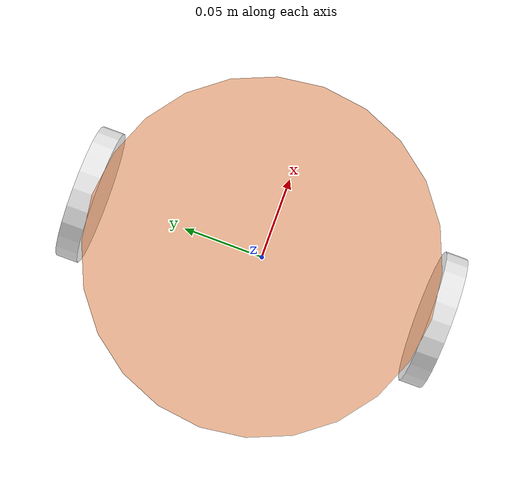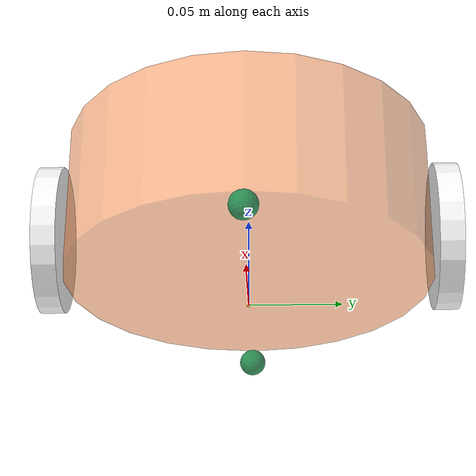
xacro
<robot name="mycar" xmlns:xacro="http://wiki.ros.org/xacro">
    <xacro:property name="PI" value="3.1415926"/>
    <xacro:property name="radius" value="0.1"/>
    <xacro:property name="footprint" value="0.001"/>
    <xacro:property name="wheel_radius" value="0.04"/>
    <xacro:property name="wheel_lenth" value="0.013"/>
    <xacro:property name="hight" value="0.015"/>
    <xacro:property name="base_lenth" value="0.08"/>

    <xacro:property name="wheel_joint_z" value="${-1*(base_lenth/2.0 -wheel_radius + hight)}"/>

    <link name = "base_footprint">
        <visual>
            <geometry>
                <sphere radius="${footprint}" />
            </geometry>
        </visual>
    </link>

    <link name="base_link">
        <visual>
            <geometry>
                <cylinder radius="${radius}" length="${base_lenth}" />
            </geometry>
            <origin xyz="0 0 0" rpy="0 0 0"/>
            <material name="BL_clolor">
                <color rgba="1.0 0.5 0.2 0.5" />
            </material>
        </visual>
        <collision>
         <geometry>
                <cylinder radius="${radius}" length="${base_lenth}" />
        </geometry>
        <origin xyz="0 0 0" rpy="0 0 0"/>
        </collision>
        <xacro:cylinder_inertial_matrix m="5" r="${radius}" h="${base_lenth}"/>
    </link>
    <gazebo reference="base_link">
        <material>Gazebo/Yellow</material>
    </gazebo>

    <joint name="L1" type="fixed">
        <parent link="base_footprint" />
        <child link="base_link" />
        <origin xyz="0 0 ${hight+base_lenth/2.0}" />
    </joint>

<xacro:macro name="mk_wheel" params="wheel_name flag1 flag2">
     <link name="${wheel_name}_wheel">
        <visual>
            <origin xyz="0 0 0" rpy="${PI*flag2*flag2/2.0} ${PI*flag1*flag1/2.0} 0" />
            <geometry>
                <cylinder radius="${wheel_radius}" length="${wheel_lenth}" />
            </geometry>
            <material name="wheel_color">
                <color rgba="1 1 1 1" />
            </material>
        </visual>
    <collision>
         <geometry>
                <cylinder radius="${wheel_radius}" length="${base_lenth}" />
        </geometry>
        <origin xyz="0 0 0" rpy="0 0 0"/>
    </collision>
        <xacro:cylinder_inertial_matrix m="0.6" r="${wheel_radius}" h="${wheel_lenth}"/>
    </link>
    <gazebo reference="${wheel_name}_wheel">
        <material>Gazebo/Red</material>
    </gazebo>

    <joint name="${wheel_name}2link" type="continuous">
        <parent link="base_link" />
        <child link="${wheel_name}_wheel" />
        <origin xyz="${(radius+wheel_lenth/2.0)*flag1} ${(radius+wheel_lenth/2.0)*flag2} ${wheel_joint_z}" rpy="0 0 0" />
        <axis xyz="${flag1} ${-flag2} 0" />
    </joint>
</xacro:macro>

    <xacro:mk_wheel wheel_name="l" flag1="0.0" flag2="1.0"/>
    <xacro:mk_wheel wheel_name="r" flag1="0.0" flag2="-1.0"/>

<link name="ball1">
        <visual>
            <geometry>
             <sphere radius="${hight/2}" />
            </geometry>
            <origin xyz="0 0 0" rpy="0 0 0"/>
            <material name="BL_clolor">
                <color rgba="0.0 0.5 0.2 0.8" />
            </material>
        </visual>
        <collision>
        <geometry>
             <sphere radius="${hight/2}" />
            </geometry>
        <origin xyz="0 0 0" rpy="0 0 0"/>
        </collision>
        <xacro:sphere_inertial_matrix m="1" r="${hight/2}" />
    </link>
    <gazebo reference="base_link">
        <material>Gazebo/Yellow</material>
    </gazebo>

    <joint name="L5" type="continuous">
        <parent link="base_link" />
        <child link="ball1" />
        <origin xyz="${radius} 0 ${-hight/2.0-base_lenth/2.0}" />
    </joint>

<link name="ball2">
        <visual>
            <geometry>
             <sphere radius="${hight/2}" />
            </geometry>
            <origin xyz="0 0 0" rpy="0 0 0"/>
            <material name="BL_clolor">
                <color rgba="0.0 0.5 0.2 0.8" />
            </material>
        </visual>
        <collision>
        <geometry>
             <sphere radius="${hight/2}" />
            </geometry>
        <origin xyz="0 0 0" rpy="0 0 0"/>
        </collision>
        <xacro:sphere_inertial_matrix m="1" r="${hight/2}" />
    </link>
    <gazebo reference="base_link">
        <material>Gazebo/Yellow</material>
    </gazebo>

    <joint name="L6" type="continuous">
        <parent link="base_link" />
        <child link="ball2" />
        <origin xyz="${-radius} 0 ${-hight/2.0-base_lenth/2.0}" />
    </joint>

</robot>
